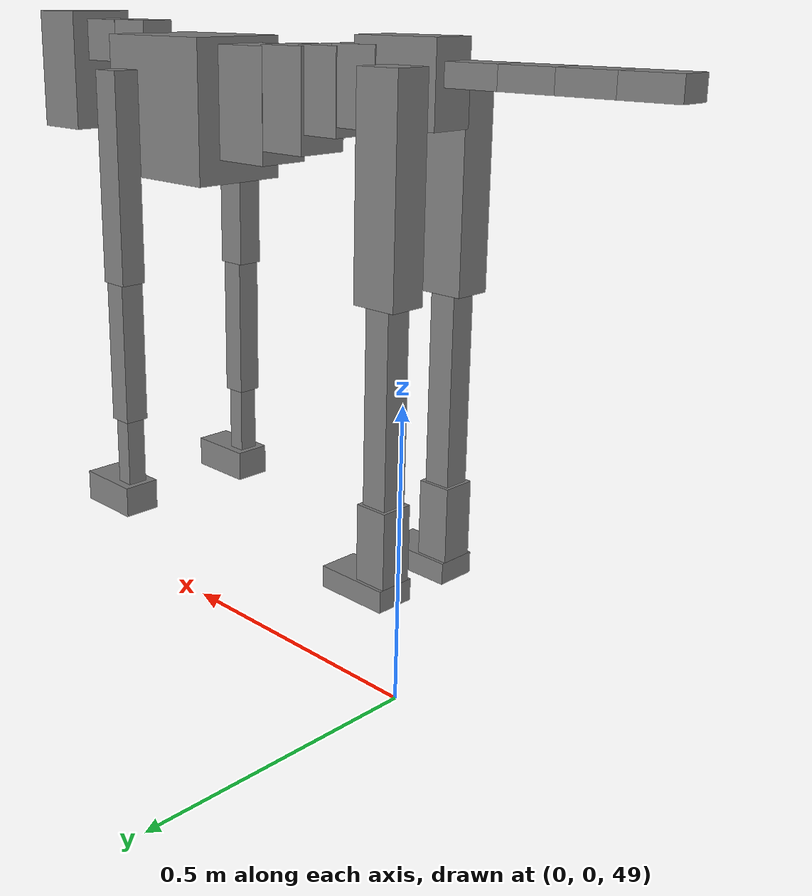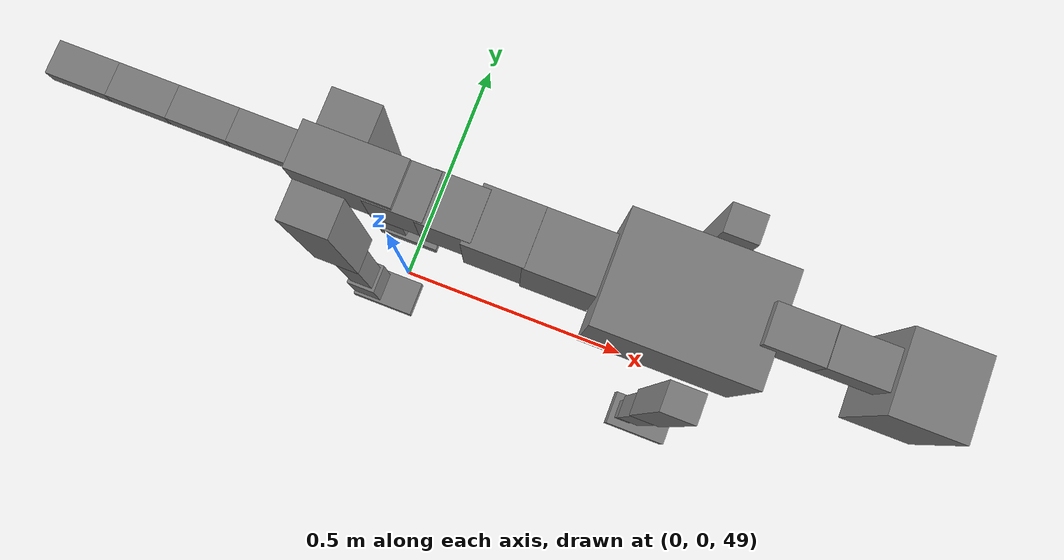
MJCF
<mujoco model="dog">

    <default>
        <joint armature="0.02" stiffness="1" damping="0.2" limited="true"/>
        <geom condim="3" friction="1 0.05 0.05" margin="0.01"/>
        <motor ctrllimited="true" ctrlrange="-1.0 1.0" forcelimited="true" gear="50"/>
    </default>

    <compiler inertiafromgeom="true" angle="radian"/>

    <option timestep="0.016" iterations="50" tolerance="1e-10" solver="Newton" jacobian="dense" cone="pyramidal"/>

    <size nconmax="20000" njmax="60000" nstack="5000000"/>
    <visual>
        <map force="0.1" zfar="30"/>
        <rgba haze="0.15 0.25 0.35 1"/>
        <quality shadowsize="2048"/>
        <global offwidth="800" offheight="800"/>
    </visual>

    <asset>
        <texture type="skybox" builtin="gradient" rgb1="0.3 0.5 0.7" rgb2="0 0 0" width="512" height="512"/>
        <texture name="texplane" type="2d" builtin="checker" rgb1=".2 .3 .4" rgb2=".1 0.15 0.2" width="512" height="512"
                 mark="cross" markrgb=".8 .8 .8"/>
        <texture name="texgeom" type="cube" builtin="flat" mark="cross" width="127" height="1278" rgb1="0.8 0.6 0.4"
                 rgb2="0.8 0.6 0.4" markrgb="1 1 1" random="0.01"/>

        <material name="matplane" reflectance="0.3" texture="texplane" texrepeat="1 1" texuniform="true"/>
        <material name="matgeom" texture="texgeom" texuniform="true" rgba="0.8 0.6 .4 1"/>
    </asset>

    <worldbody>
        <geom name="floor" pos="0 0 0" size="0 0 .25" type="plane" material="matplane" condim="3"/>

        <light directional="false" diffuse=".2 .2 .2" specular="0 0 0" pos="0 0 5" dir="0 0 -1" castshadow="false"/>
        <light mode="targetbodycom" target="torso" directional="false" diffuse=".8 .8 .8" specular="0.3 0.3 0.3"
               pos="0 0 4.0" dir="0 0 -1"/>

        <body name="root" pos="0 0 50">
            <freejoint name="root_1"/>
            <geom type="box" pos="0 0 -0.02" size="0.0774  0.0358  0.063" density="2030"/>

            <body name="spine1" pos="0.054 0 0">
                <joint name="spine1_y" axis="0 1 0" range="0 0.7" limited="true"/>
                <geom type="box" pos="0.02375 0 -0.03" size="0.04375  0.0375  0.05985" density="2030"/>

                <body name="spine2" pos="0.0612 0 0">
                    <joint name="spine2_y" axis="0 1 0" range="-0.15 0.15" limited="true"/>
                    <geom type="box" pos="0.03555  0  -0.04" size="0.04055  0.039  0.06615" density="2030"/>

                    <body name="spine3" pos="0.0730 0 0">
                        <joint name="spine3_y" axis="0 1 0" range="-0.15 0.15" limited="true"/>
                        <geom type="box" pos="0.03555  0  -0.057" size="0.04555  0.0445  0.081" density="2030"/>

                        <body name="spine4" pos="0.0780 0 0">
                            <joint name="spine4_y" axis="0 1 0" range="-0.15 0.15" limited="true"/>
                            <geom type="box" pos="0.05265  0  -0.07" size="0.05265  0.045  0.09135" density="2030"/>

                            <body name="torso" pos="0.1082 0 0">
                                <joint name="torso_y" axis="0 1 0" range="-0.15 0.15" limited="true"/>
                                <geom type="box" pos="0.11925  0  -0.085" size="0.11925  0.085  0.11745"
                                      density="2030"/>

                                <body name="neck1" pos="0.2160  0   0.0180">
                                    <joint name="neck1_y" axis="0 1 0" range="-1.2  -1" limited="true"/>
                                    <geom type="box" pos="0.0423  0  0" size="0.0423  0.03  0.036" density="2325"/>

                                    <body name="neck2" pos="0.0853  0  0">
                                        <joint name="neck2_y" axis="0 1 0" range="0.1  0" limited="true"/>
                                        <geom type="box" pos="0.0423  0  0" size="0.0423  0.03  0.036" density="2325"/>

                                        <body name="head" pos="0.0853  0  0">
                                            <joint name="head_y" axis="0 1 0" range="-0.3  -0.2" limited="true"/>
                                            <geom type="box" pos="0.0531  0  -0.055" size="0.0531  0.06  0.1044"
                                                  density="4030"/>

                                        </body>
                                    </body>
                                </body>

                                <body name="front_shoulder" pos="0.156  0   -0.0480">
                                    <joint name="front_shoulder_y" axis="0 1 0" range="-1 1.5" limited="true"/>
                                    <geom type="box" pos="0 0.13 -0.1516" size="0.0266  0.0227  0.1782" density="1158"/>
                                    <geom type="box" pos="0 -0.13 -0.1516" size="0.0266  0.0227  0.1782"
                                          density="1158"/>

                                    <body name="front_elbow" pos="0  0  -0.3032">
                                        <joint name="front_elbow_y" axis="0 1 0" range="-2 0" limited="true"/>
                                        <geom type="box" pos="0 0.13 -0.1363" size="0.0209  0.0214  0.1363"
                                              density="1081"/>
                                        <geom type="box" pos="0 -0.13 -0.1363" size="0.0209  0.0214  0.1363"
                                              density="1081"/>

                                        <body name="front_wrist" pos="0  0  -0.2727">
                                            <joint name="front_wrist_y" axis="0 1 0" range="-0.2 0" limited="true"/>
                                            <geom type="box" pos="0 0.13 -0.0663" size="0.0156  0.0173  0.0794"
                                                  density="1664"/>
                                            <geom type="box" pos="0 -0.13 -0.0663" size="0.0156  0.0173  0.0794"
                                                  density="1664"/>

                                            <body name="front_finger_end" pos="0  0  -0.1325">
                                                <joint name="front_finger_y" axis="0 1 0" range="-0.4 1"
                                                       limited="true"/>
                                                <geom type="box" pos="0.0322  0.13  -0.0118"
                                                      size="0.0590  0.0322  0.0268" density="1515"/>
                                                <geom type="box" pos="0.0322  -0.13  -0.0118"
                                                      size="0.0590  0.0322  0.0268" density="1515"/>

                                            </body>

                                        </body>
                                    </body>
                                </body>

                            </body>
                        </body>
                    </body>
                </body>
            </body>

            <body name="back_hip" pos="-0.03 0 -0.018">
                <joint name="back_hip_y" axis="0 1 0" range="-1.5 0.3" limited="true"/>
                <geom type="box" pos="0 0.07 -0.1435" size="0.0385  0.0302  0.1663" density="1154"/>
                <geom type="box" pos="0 -0.07 -0.1435" size="0.0385  0.0302  0.1663" density="1154"/>

                <body name="back_knee" pos="0  0  -0.2870">
                    <joint name="back_knee_y" axis="0 1 0" range="0 2.8" limited="true"/>
                    <geom type="box" pos="0 0.07 -0.1688" size="0.0218  0.0215  0.1844" density="1227"/>
                    <geom type="box" pos="0 -0.07 -0.1688" size="0.0218  0.0215  0.1844" density="1227"/>

                    <body name="back_ankle" pos="0  0  -0.3376">
                        <joint name="back_ankle_y" axis="0 1 0" range="-2.2 0" limited="true"/>
                        <geom type="box" pos="0 0.07 -0.0629" size="0.0275  0.0275  0.0742" density="1284"/>
                        <geom type="box" pos="0 -0.07 -0.0629" size="0.0275  0.0275  0.0742" density="1284"/>

                        <body name="back_toe_end" pos="0  0  -0.1258">
                            <joint name="back_toe_y" axis="0 1 0" range="-0.4 1" limited="true"/>
                            <geom type="box" pos="0.0332  0.07  -0.0025" size="0.0609  0.0332  0.0175" density="1515"/>
                            <geom type="box" pos="0.0332  -0.07  -0.0025" size="0.0609  0.0332  0.0175" density="1515"/>

                        </body>
                    </body>
                </body>
            </body>

            <body name="tail1" pos="-0.074 0 -0.006">
                <joint name="tail1_y" axis="0 1 0" range="-0.2 0.2" limited="true"/>
                <geom type="box" pos="-0.0536  0  0" size="0.045  0.025  0.0175" density="1587"/>

                <body name="tail2" pos="-0.09 0 0">
                    <joint name="tail2_y" axis="0 1 0" range="-0.2 0.2" limited="true"/>
                    <geom type="box" pos="-0.0536  0  0" size="0.045  0.025  0.0175" density="1587"/>

                    <body name="tail3" pos="-0.09 0 0">
                        <joint name="tail3_y" axis="0 1 0" range="-0.2 0.2" limited="true"/>
                        <geom type="box" pos="-0.0536  0  0" size="0.045  0.025  0.0175" density="1587"/>

                        <body name="tail4" pos="-0.09 0 0">
                            <joint name="tail4_y" axis="0 1 0" range="-0.2 0.2" limited="true"/>
                            <geom type="box" pos="-0.0536  0  0" size="0.045  0.025  0.0175" density="1587"/>

                        </body>
                    </body>
                </body>
            </body>
        </body>
    </worldbody>

    <actuator>
        <motor joint="spine1_y" forcerange="-150 150     "/>
        <motor joint="spine2_y" forcerange="-150 150     "/>
        <motor joint="spine3_y" forcerange="-150 150     "/>
        <motor joint="spine4_y" forcerange="-150 150     "/>
        <motor joint="torso_y" forcerange="-150 150     "/>
        <motor joint="neck1_y" forcerange="-100 100       "/>
        <motor joint="neck2_y" forcerange="-100 100       "/>
        <motor joint="head_y" forcerange="-150 150       "/>
        <motor joint="front_shoulder_y" forcerange="-140.48 110.81"/>
        <motor joint="front_elbow_y" forcerange="-116.19 139.27"/>
        <motor joint="front_wrist_y" forcerange="-84.61 54.07"/>
        <motor joint="front_finger_y" forcerange="-75.40 56.31"/>
        <motor joint="back_hip_y" forcerange="-365.44 237.63"/>
        <motor joint="back_knee_y" forcerange="-284.22 228.06"/>
        <motor joint="back_angle_y" forcerange="-154.49 185.74"/>
        <motor joint="back_toe_y" forcerange="-138.70 47.02"/>
        <motor joint="tail1_y" forcerange="-50 50     "/>
        <motor joint="tail2_y" forcerange="-50 50     "/>
        <motor joint="tail3_y" forcerange="-50 50     "/>
        <motor joint="tail4_y" forcerange="-50 50     "/>
    </actuator>
</mujoco>
